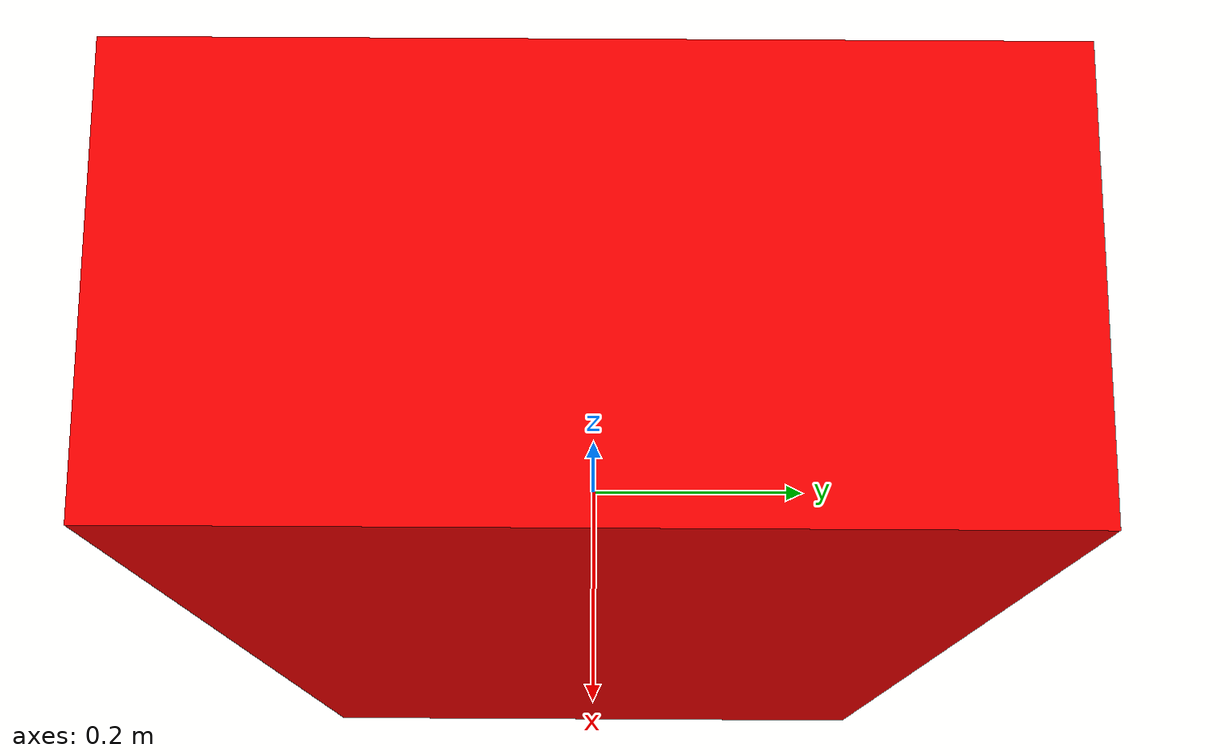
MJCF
<mujoco model="target">
  <custom>
    <numeric name="aabb_scale" size="1" data=".64"/>
  </custom>

  <worldbody>
    <site name="ft_sensor"/>
    <body name="object">
      <geom name="geom" type="box" density="1000" size=".16 .32 .64" rgba="1 0 0 1"/>
    </body>
  </worldbody>

  <sensor>
    <accelerometer name="linacc_sen" site="ft_sensor"/>
    <force name="force" site="ft_sensor"/>
    <torque name="torque" site="ft_sensor"/>
  </sensor>

</mujoco>
